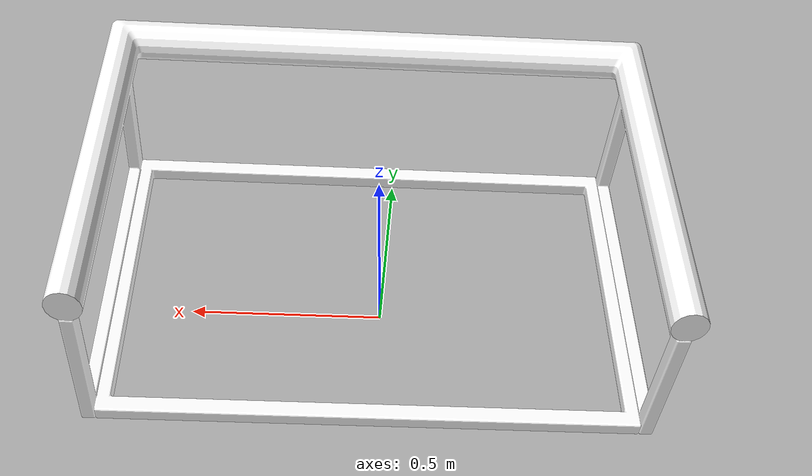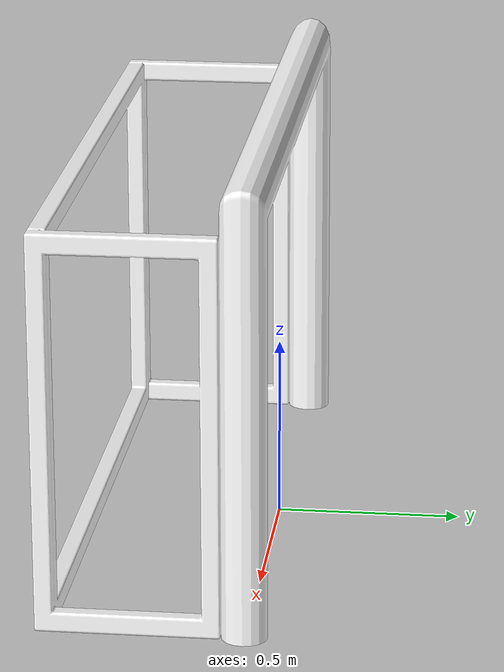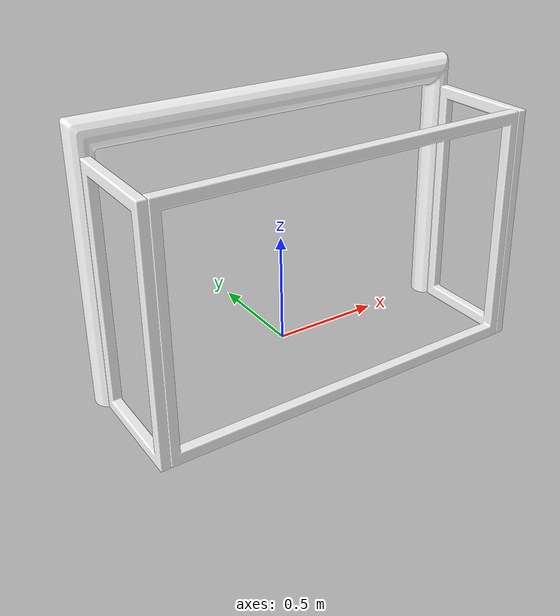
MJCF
<mujoco model="goal">
    <compiler angle="radian" meshdir="assets" autolimits="true" />

    <asset>
        <material name="goal_white" rgba="1.0 1.0 1.0 1.0" />
        <mesh name="goal_mesh" file="goal_180_120.obj" />
    </asset>

    <default>
        <default class="goal_visual">
            <geom contype="0" conaffinity="0" group="2" />
        </default>
        <default class="goal_collision">
            <geom contype="1" conaffinity="1" group="3" />
        </default>
    </default>

    <worldbody>
        <body>
            <geom class="goal_visual" type="mesh" mesh="goal_mesh" material="goal_white" />

            <!-- Use primitive colliders to avoid convex-hull blocking across the goal mouth. -->
            <geom
                class="goal_collision"
                type="box"
                pos="-0.847056 0.0 0.6"
                size="0.052941 0.06 0.6"
            />
            <geom
                class="goal_collision"
                type="box"
                pos="0.847056 0.0 0.6"
                size="0.052941 0.06 0.6"
            />
            <geom
                class="goal_collision"
                type="box"
                pos="-0.847056 -0.48 0.533333"
                size="0.04 0.045 0.533333"
            />
            <geom
                class="goal_collision"
                type="box"
                pos="0.847056 -0.48 0.533333"
                size="0.04 0.045 0.533333"
            />
            <geom
                class="goal_collision"
                type="box"
                pos="0.0 -0.48 1.026667"
                size="0.847056 0.045 0.04"
            />
            <geom
                class="goal_collision"
                type="box"
                pos="0.0 -0.48 0.03"
                size="0.847056 0.045 0.03"
            />
            <geom
                class="goal_collision"
                type="box"
                pos="-0.823 -0.24 1.051713"
                size="0.04 0.24 0.045"
            />
            <geom
                class="goal_collision"
                type="box"
                pos="0.823 -0.24 1.051713"
                size="0.04 0.24 0.045"
            />
            <geom
                class="goal_collision"
                type="box"
                pos="-0.823 -0.24 0.03"
                size="0.04 0.24 0.03"
            />
            <geom
                class="goal_collision"
                type="box"
                pos="0.823 -0.24 0.03"
                size="0.04 0.24 0.03"
            />
            <geom
                class="goal_collision"
                type="box"
                pos="0.0 0.0 1.147059"
                size="0.847056 0.06 0.052941"
            />
        </body>
    </worldbody>
</mujoco>
